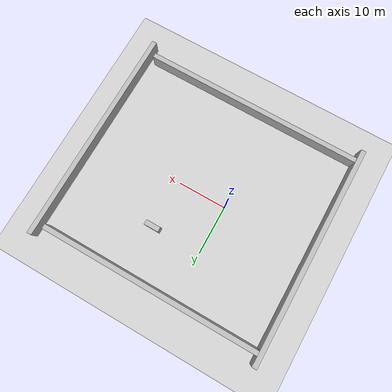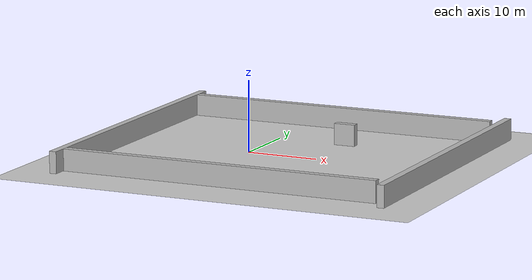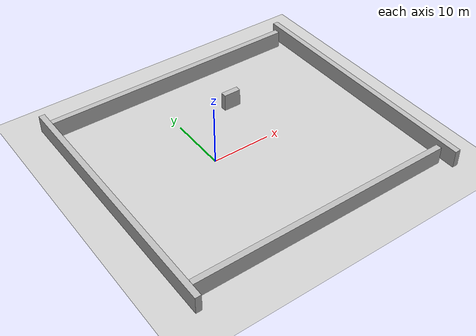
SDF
<sdf version="1.4">
 <world name="default">
  <light name="sun" type="directional">
   <pose>0 0 10 0 -0 0</pose>
   <diffuse>0.8 0.8 0.8 1</diffuse>
   <specular>0.2 0.2 0.2 1</specular>
   <attenuation>
    <range>1000</range>
    <constant>0.9</constant>
    <linear>0.01</linear>
    <quadratic>0.001</quadratic>
   </attenuation>
   <direction>-0.5 0.1 -0.9</direction>
  </light>
  <model name="ground_plane">
   <static>1</static>
   <link name="link">
    <collision name="collision">
     <geometry><plane><normal>0 0 1</normal><size>100 100</size></plane></geometry>
     <surface><friction><ode><mu>100</mu><mu2>50</mu2></ode></friction></surface>
    </collision>
    <visual name="visual">
     <cast_shadows>0</cast_shadows>
     <geometry><plane><normal>0 0 1</normal><size>100 100</size></plane></geometry>
     <material>
      <script><uri>file://media/materials/scripts/gazebo.material</uri><name>Gazebo/Grey</name></script>
     </material>
    </visual>
    <velocity_decay><linear>0</linear><angular>0</angular></velocity_decay>
   </link>
  </model>
  <physics name="defualt physics" default="0" type="ode">
   <max_step_size>0.001</max_step_size>
   <real_time_factor>1</real_time_factor>
   <real_time_update_rate>1000</real_time_update_rate>
   <gravity>0 0 -9.8</gravity>
  </physics>
  <scene><ambient>0.4 0.4 0.4 1</ambient><background>0.7 0.7 0.7 1</background><shadows>1</shadows></scene>
  <spherical_coordinates>
   <surface_model>EARTH_WGS84</surface_model>
   <latitude_deg>0</latitude_deg>
   <longitude_deg>0</longitude_deg>
   <elevation>0</elevation>
   <heading_deg>0</heading_deg>
  </spherical_coordinates>
  <model name="brick_box_3x1x3">
   <static>1</static>
   <link name="chassis">
    <pose>10 0 1.5 0 0 1.57</pose>
    <collision name="collision"><geometry><box><size>3 1 3</size></box></geometry></collision>
    <visual name="visual">
     <geometry><mesh><uri>model://brick_box_3x1x3/meshes/simple_box.dae</uri><scale>3 1 3</scale></mesh></geometry>
     <material>
      <script>
       <uri>model://brick_box_3x1x3/materials/scripts</uri>
       <uri>model://brick_box_3x1x3/materials/textures</uri>
       <name>BrickBox/Diffuse</name>
      </script>
     </material>
    </visual>
    <velocity_decay><linear>0</linear><angular>0</angular></velocity_decay>
   </link>
   <pose>10 0 0 0 0 1.57</pose>
  </model>
  <model name="brick_box_3x1x3_0">
   <static>1</static>
   <link name="chassis">
    <pose>0 0 1.5 0 -0 0</pose>
    <collision name="collision"><geometry><box><size>45 1 3</size></box></geometry></collision>
    <visual name="visual">
     <geometry>
      <mesh><uri>model://brick_box_3x1x3/meshes/simple_box.dae</uri><scale>45 1 3</scale></mesh>
     </geometry>
     <material>
      <script>
       <uri>model://brick_box_3x1x3/materials/scripts</uri>
       <uri>model://brick_box_3x1x3/materials/textures</uri>
       <name>BrickBox/Diffuse</name>
      </script>
     </material>
    </visual>
    <velocity_decay><linear>0</linear><angular>0</angular></velocity_decay>
   </link>
   <pose>29 0 0 0 -0 1.57</pose>
  </model>
  <model name="brick_box_3x1x3_2">
   <static>1</static>
   <link name="chassis">
    <pose>0 0 1.5 0 -0 0</pose>
    <collision name="collision"><geometry><box><size>45 1 3</size></box></geometry></collision>
    <visual name="visual">
     <geometry>
      <mesh><uri>model://brick_box_3x1x3/meshes/simple_box.dae</uri><scale>45 1 3</scale></mesh>
     </geometry>
     <material>
      <script>
       <uri>model://brick_box_3x1x3/materials/scripts</uri>
       <uri>model://brick_box_3x1x3/materials/textures</uri>
       <name>BrickBox/Diffuse</name>
      </script>
     </material>
    </visual>
    <velocity_decay><linear>0</linear><angular>0</angular></velocity_decay>
   </link>
   <pose>5 20 0 0 -0 0</pose>
  </model>
  <model name="brick_box_3x1x3_10">
   <static>1</static>
   <link name="chassis">
    <pose>0 0 1.5 0 -0 0</pose>
    <collision name="collision"><geometry><box><size>45 1 3</size></box></geometry></collision>
    <visual name="visual">
     <geometry>
      <mesh><uri>model://brick_box_3x1x3/meshes/simple_box.dae</uri><scale>45 1 3</scale></mesh>
     </geometry>
     <material>
      <script>
       <uri>model://brick_box_3x1x3/materials/scripts</uri>
       <uri>model://brick_box_3x1x3/materials/textures</uri>
       <name>BrickBox/Diffuse</name>
      </script>
     </material>
    </visual>
    <velocity_decay><linear>0</linear><angular>0</angular></velocity_decay>
   </link>
   <pose>-18 0 0 0 -0 1.57</pose>
  </model>
  <model name="brick_box_3x1x3_11">
   <static>1</static>
   <link name="chassis">
    <pose>0 0 1.5 0 -0 0</pose>
    <collision name="collision"><geometry><box><size>45 1 3</size></box></geometry></collision>
    <visual name="visual">
     <geometry>
      <mesh><uri>model://brick_box_3x1x3/meshes/simple_box.dae</uri><scale>45 1 3</scale></mesh>
     </geometry>
     <material>
      <script>
       <uri>model://brick_box_3x1x3/materials/scripts</uri>
       <uri>model://brick_box_3x1x3/materials/textures</uri>
       <name>BrickBox/Diffuse</name>
      </script>
     </material>
    </visual>
    <velocity_decay><linear>0</linear><angular>0</angular></velocity_decay>
   </link>
   <pose>5 -20 0 0 -0 0</pose>
  </model>
 </world>
</sdf>
